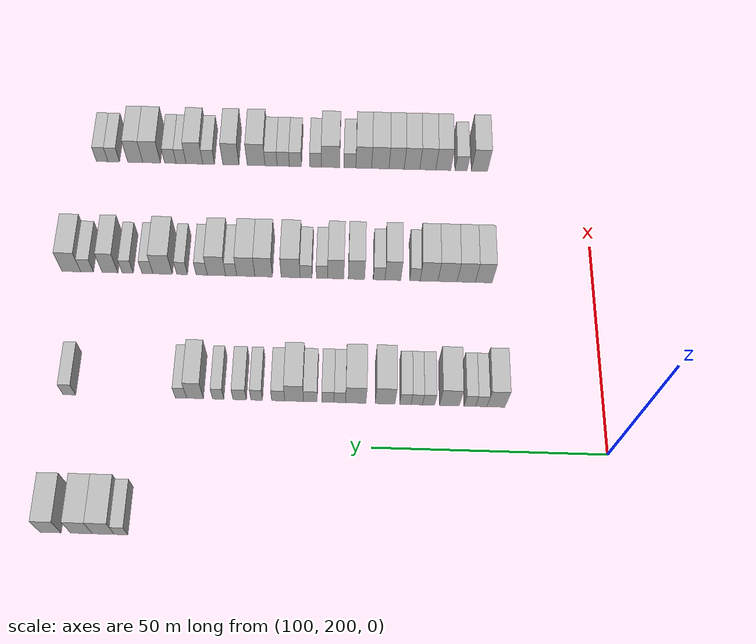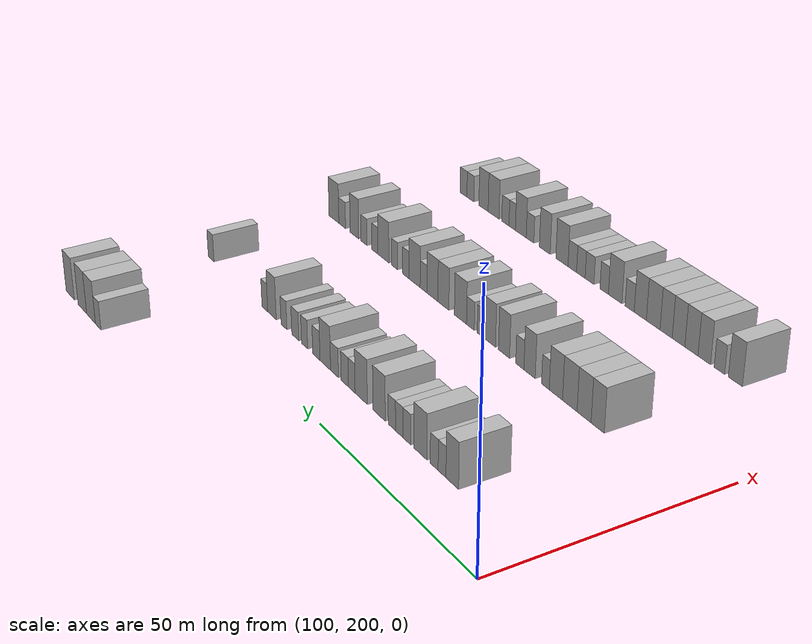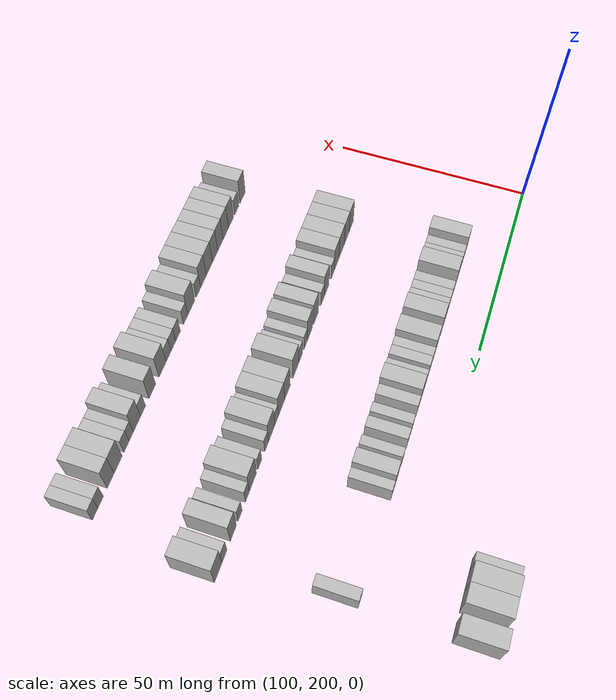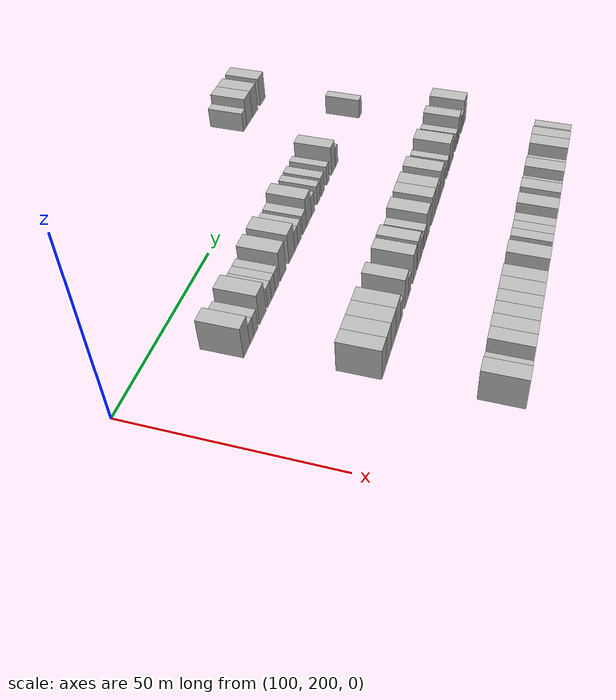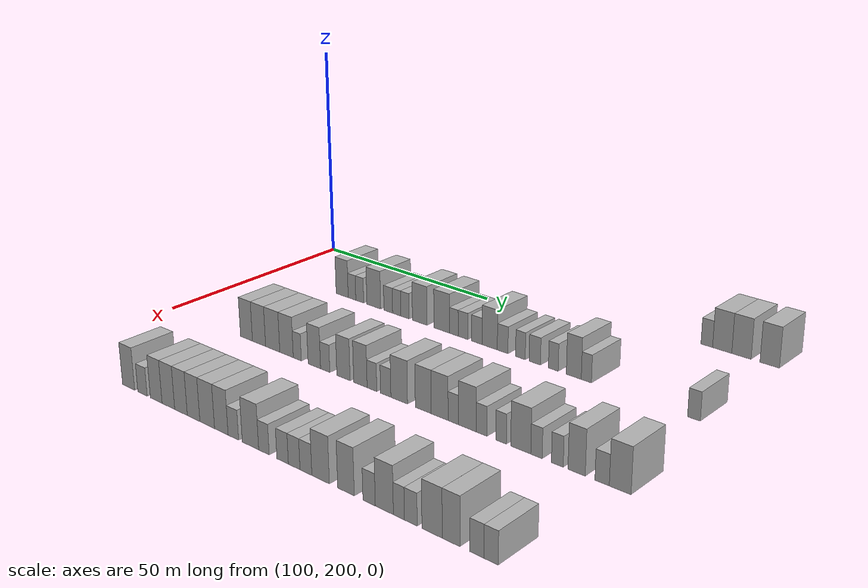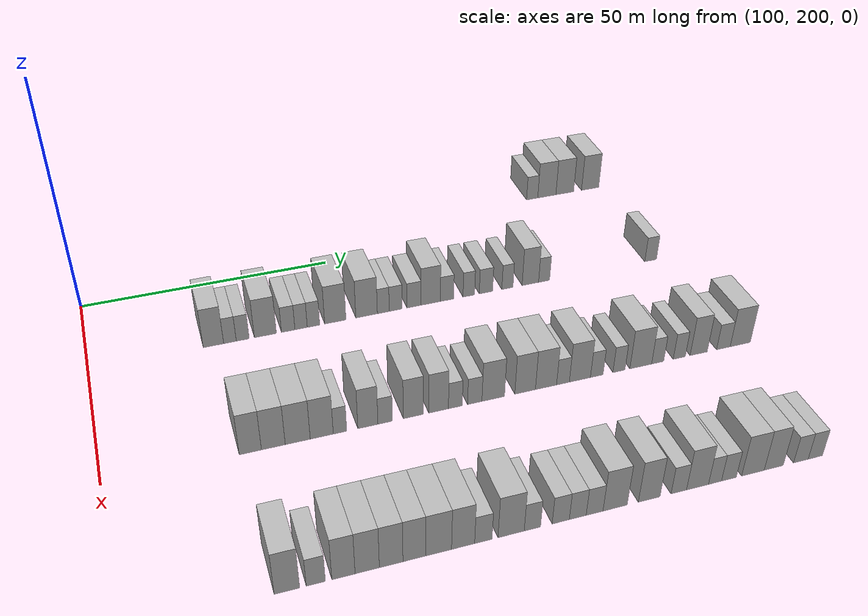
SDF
<sdf version="1.6">
 <world name="default">
  <model name="building_643">
   <static>1</static>
   <pose>85.0000 301.0085 0 0.000000 0.000000 0.000000</pose>
   <link name="link">
    <pose>0 0 3.00 0 0 0</pose>
    <collision name="collision"><geometry><box><size>10.0000 2.7618 6.0000</size></box></geometry></collision>
    <visual name="visual">
     <cast_shadows>0</cast_shadows>
     <geometry><box><size>10.0000 2.7618 6.0000</size></box></geometry>
     <material>
      <script>
       <uri>model://HANNAS_wall/materials/scripts</uri>
       <uri>model://HANNAS_wall/materials/textures</uri>
       <name>vrc/HANNAS_wall</name>
      </script>
     </material>
    </visual>
   </link>
  </model>
  <model name="building_644">
   <static>1</static>
   <pose>85.0000 304.6378 0 0.000000 0.000000 0.000000</pose>
   <link name="link">
    <pose>0 0 4.50 0 0 0</pose>
    <collision name="collision"><geometry><box><size>10.0000 4.4969 9.0000</size></box></geometry></collision>
    <visual name="visual">
     <cast_shadows>0</cast_shadows>
     <geometry><box><size>10.0000 4.4969 9.0000</size></box></geometry>
     <material>
      <script>
       <uri>model://HANNAS_wall/materials/scripts</uri>
       <uri>model://HANNAS_wall/materials/textures</uri>
       <name>vrc/HANNAS_wall</name>
      </script>
     </material>
    </visual>
   </link>
  </model>
  <model name="building_645">
   <static>1</static>
   <pose>85.0000 309.1018 0 0.000000 0.000000 0.000000</pose>
   <link name="link">
    <pose>0 0 4.50 0 0 0</pose>
    <collision name="collision"><geometry><box><size>10.0000 4.4311 9.0000</size></box></geometry></collision>
    <visual name="visual">
     <cast_shadows>0</cast_shadows>
     <geometry><box><size>10.0000 4.4311 9.0000</size></box></geometry>
     <material>
      <script>
       <uri>model://HANNAS_wall/materials/scripts</uri>
       <uri>model://HANNAS_wall/materials/textures</uri>
       <name>vrc/HANNAS_wall</name>
      </script>
     </material>
    </visual>
   </link>
  </model>
  <model name="building_646">
   <static>1</static>
   <pose>85.0000 315.4865 0 0.000000 0.000000 0.000000</pose>
   <link name="link">
    <pose>0 0 4.50 0 0 0</pose>
    <collision name="collision"><geometry><box><size>10.0000 4.3384 9.0000</size></box></geometry></collision>
    <visual name="visual">
     <cast_shadows>0</cast_shadows>
     <geometry><box><size>10.0000 4.3384 9.0000</size></box></geometry>
     <material>
      <script>
       <uri>model://HANNAS_wall/materials/scripts</uri>
       <uri>model://HANNAS_wall/materials/textures</uri>
       <name>vrc/HANNAS_wall</name>
      </script>
     </material>
    </visual>
   </link>
  </model>
  <model name="building_852">
   <static>1</static>
   <pose>115.0000 223.3250 0 0.000000 0.000000 0.000000</pose>
   <link name="link">
    <pose>0 0 4.50 0 0 0</pose>
    <collision name="collision"><geometry><box><size>10.0000 3.9006 9.0000</size></box></geometry></collision>
    <visual name="visual">
     <cast_shadows>0</cast_shadows>
     <geometry><box><size>10.0000 3.9006 9.0000</size></box></geometry>
     <material>
      <script>
       <uri>model://HANNAS_wall/materials/scripts</uri>
       <uri>model://HANNAS_wall/materials/textures</uri>
       <name>vrc/HANNAS_wall</name>
      </script>
     </material>
    </visual>
   </link>
  </model>
  <model name="building_853">
   <static>1</static>
   <pose>115.0000 226.4879 0 0.000000 0.000000 0.000000</pose>
   <link name="link">
    <pose>0 0 3.00 0 0 0</pose>
    <collision name="collision"><geometry><box><size>10.0000 2.4252 6.0000</size></box></geometry></collision>
    <visual name="visual">
     <cast_shadows>0</cast_shadows>
     <geometry><box><size>10.0000 2.4252 6.0000</size></box></geometry>
     <material>
      <script>
       <uri>model://HANNAS_wall/materials/scripts</uri>
       <uri>model://HANNAS_wall/materials/textures</uri>
       <name>vrc/HANNAS_wall</name>
      </script>
     </material>
    </visual>
   </link>
  </model>
  <model name="building_854">
   <static>1</static>
   <pose>115.0000 228.9532 0 0.000000 0.000000 0.000000</pose>
   <link name="link">
    <pose>0 0 3.00 0 0 0</pose>
    <collision name="collision"><geometry><box><size>10.0000 2.5054 6.0000</size></box></geometry></collision>
    <visual name="visual">
     <cast_shadows>0</cast_shadows>
     <geometry><box><size>10.0000 2.5054 6.0000</size></box></geometry>
     <material>
      <script>
       <uri>model://HANNAS_wall/materials/scripts</uri>
       <uri>model://HANNAS_wall/materials/textures</uri>
       <name>vrc/HANNAS_wall</name>
      </script>
     </material>
    </visual>
   </link>
  </model>
  <model name="building_855">
   <static>1</static>
   <pose>115.0000 233.3569 0 0.000000 0.000000 0.000000</pose>
   <link name="link">
    <pose>0 0 4.50 0 0 0</pose>
    <collision name="collision"><geometry><box><size>10.0000 4.3020 9.0000</size></box></geometry></collision>
    <visual name="visual">
     <cast_shadows>0</cast_shadows>
     <geometry><box><size>10.0000 4.3020 9.0000</size></box></geometry>
     <material>
      <script>
       <uri>model://HANNAS_wall/materials/scripts</uri>
       <uri>model://HANNAS_wall/materials/textures</uri>
       <name>vrc/HANNAS_wall</name>
      </script>
     </material>
    </visual>
   </link>
  </model>
  <model name="building_856">
   <static>1</static>
   <pose>115.0000 237.8327 0 0.000000 0.000000 0.000000</pose>
   <link name="link">
    <pose>0 0 3.00 0 0 0</pose>
    <collision name="collision"><geometry><box><size>10.0000 2.6496 6.0000</size></box></geometry></collision>
    <visual name="visual">
     <cast_shadows>0</cast_shadows>
     <geometry><box><size>10.0000 2.6496 6.0000</size></box></geometry>
     <material>
      <script>
       <uri>model://HANNAS_wall/materials/scripts</uri>
       <uri>model://HANNAS_wall/materials/textures</uri>
       <name>vrc/HANNAS_wall</name>
      </script>
     </material>
    </visual>
   </link>
  </model>
  <model name="building_857">
   <static>1</static>
   <pose>115.0000 240.3846 0 0.000000 0.000000 0.000000</pose>
   <link name="link">
    <pose>0 0 3.00 0 0 0</pose>
    <collision name="collision"><geometry><box><size>10.0000 2.4543 6.0000</size></box></geometry></collision>
    <visual name="visual">
     <cast_shadows>0</cast_shadows>
     <geometry><box><size>10.0000 2.4543 6.0000</size></box></geometry>
     <material>
      <script>
       <uri>model://HANNAS_wall/materials/scripts</uri>
       <uri>model://HANNAS_wall/materials/textures</uri>
       <name>vrc/HANNAS_wall</name>
      </script>
     </material>
    </visual>
   </link>
  </model>
  <model name="building_858">
   <static>1</static>
   <pose>115.0000 242.8525 0 0.000000 0.000000 0.000000</pose>
   <link name="link">
    <pose>0 0 3.00 0 0 0</pose>
    <collision name="collision"><geometry><box><size>10.0000 2.4816 6.0000</size></box></geometry></collision>
    <visual name="visual">
     <cast_shadows>0</cast_shadows>
     <geometry><box><size>10.0000 2.4816 6.0000</size></box></geometry>
     <material>
      <script>
       <uri>model://HANNAS_wall/materials/scripts</uri>
       <uri>model://HANNAS_wall/materials/textures</uri>
       <name>vrc/HANNAS_wall</name>
      </script>
     </material>
    </visual>
   </link>
  </model>
  <model name="building_859">
   <static>1</static>
   <pose>115.0000 247.2357 0 0.000000 0.000000 0.000000</pose>
   <link name="link">
    <pose>0 0 4.50 0 0 0</pose>
    <collision name="collision"><geometry><box><size>10.0000 4.2849 9.0000</size></box></geometry></collision>
    <visual name="visual">
     <cast_shadows>0</cast_shadows>
     <geometry><box><size>10.0000 4.2849 9.0000</size></box></geometry>
     <material>
      <script>
       <uri>model://HANNAS_wall/materials/scripts</uri>
       <uri>model://HANNAS_wall/materials/textures</uri>
       <name>vrc/HANNAS_wall</name>
      </script>
     </material>
    </visual>
   </link>
  </model>
  <model name="building_860">
   <static>1</static>
   <pose>115.0000 253.5825 0 0.000000 0.000000 0.000000</pose>
   <link name="link">
    <pose>0 0 4.50 0 0 0</pose>
    <collision name="collision"><geometry><box><size>10.0000 4.4086 9.0000</size></box></geometry></collision>
    <visual name="visual">
     <cast_shadows>0</cast_shadows>
     <geometry><box><size>10.0000 4.4086 9.0000</size></box></geometry>
     <material>
      <script>
       <uri>model://HANNAS_wall/materials/scripts</uri>
       <uri>model://HANNAS_wall/materials/textures</uri>
       <name>vrc/HANNAS_wall</name>
      </script>
     </material>
    </visual>
   </link>
  </model>
  <model name="building_861">
   <static>1</static>
   <pose>115.0000 257.0149 0 0.000000 0.000000 0.000000</pose>
   <link name="link">
    <pose>0 0 3.00 0 0 0</pose>
    <collision name="collision"><geometry><box><size>10.0000 2.4562 6.0000</size></box></geometry></collision>
    <visual name="visual">
     <cast_shadows>0</cast_shadows>
     <geometry><box><size>10.0000 2.4562 6.0000</size></box></geometry>
     <material>
      <script>
       <uri>model://HANNAS_wall/materials/scripts</uri>
       <uri>model://HANNAS_wall/materials/textures</uri>
       <name>vrc/HANNAS_wall</name>
      </script>
     </material>
    </visual>
   </link>
  </model>
  <model name="building_862">
   <static>1</static>
   <pose>115.0000 259.5790 0 0.000000 0.000000 0.000000</pose>
   <link name="link">
    <pose>0 0 3.00 0 0 0</pose>
    <collision name="collision"><geometry><box><size>10.0000 2.6721 6.0000</size></box></geometry></collision>
    <visual name="visual">
     <cast_shadows>0</cast_shadows>
     <geometry><box><size>10.0000 2.6721 6.0000</size></box></geometry>
     <material>
      <script>
       <uri>model://HANNAS_wall/materials/scripts</uri>
       <uri>model://HANNAS_wall/materials/textures</uri>
       <name>vrc/HANNAS_wall</name>
      </script>
     </material>
    </visual>
   </link>
  </model>
  <model name="building_863">
   <static>1</static>
   <pose>115.0000 263.3955 0 0.000000 0.000000 0.000000</pose>
   <link name="link">
    <pose>0 0 3.00 0 0 0</pose>
    <collision name="collision"><geometry><box><size>10.0000 2.9608 6.0000</size></box></geometry></collision>
    <visual name="visual">
     <cast_shadows>0</cast_shadows>
     <geometry><box><size>10.0000 2.9608 6.0000</size></box></geometry>
     <material>
      <script>
       <uri>model://HANNAS_wall/materials/scripts</uri>
       <uri>model://HANNAS_wall/materials/textures</uri>
       <name>vrc/HANNAS_wall</name>
      </script>
     </material>
    </visual>
   </link>
  </model>
  <model name="building_864">
   <static>1</static>
   <pose>115.0000 266.9025 0 0.000000 0.000000 0.000000</pose>
   <link name="link">
    <pose>0 0 4.50 0 0 0</pose>
    <collision name="collision"><geometry><box><size>10.0000 4.0531 9.0000</size></box></geometry></collision>
    <visual name="visual">
     <cast_shadows>0</cast_shadows>
     <geometry><box><size>10.0000 4.0531 9.0000</size></box></geometry>
     <material>
      <script>
       <uri>model://HANNAS_wall/materials/scripts</uri>
       <uri>model://HANNAS_wall/materials/textures</uri>
       <name>vrc/HANNAS_wall</name>
      </script>
     </material>
    </visual>
   </link>
  </model>
  <model name="building_865">
   <static>1</static>
   <pose>115.0000 270.3402 0 0.000000 0.000000 0.000000</pose>
   <link name="link">
    <pose>0 0 3.00 0 0 0</pose>
    <collision name="collision"><geometry><box><size>10.0000 2.8223 6.0000</size></box></geometry></collision>
    <visual name="visual">
     <cast_shadows>0</cast_shadows>
     <geometry><box><size>10.0000 2.8223 6.0000</size></box></geometry>
     <material>
      <script>
       <uri>model://HANNAS_wall/materials/scripts</uri>
       <uri>model://HANNAS_wall/materials/textures</uri>
       <name>vrc/HANNAS_wall</name>
      </script>
     </material>
    </visual>
   </link>
  </model>
  <model name="building_866">
   <static>1</static>
   <pose>115.0000 274.9977 0 0.000000 0.000000 0.000000</pose>
   <link name="link">
    <pose>0 0 3.00 0 0 0</pose>
    <collision name="collision"><geometry><box><size>10.0000 2.4926 6.0000</size></box></geometry></collision>
    <visual name="visual">
     <cast_shadows>0</cast_shadows>
     <geometry><box><size>10.0000 2.4926 6.0000</size></box></geometry>
     <material>
      <script>
       <uri>model://HANNAS_wall/materials/scripts</uri>
       <uri>model://HANNAS_wall/materials/textures</uri>
       <name>vrc/HANNAS_wall</name>
      </script>
     </material>
    </visual>
   </link>
  </model>
  <model name="building_867">
   <static>1</static>
   <pose>115.0000 278.6900 0 0.000000 0.000000 0.000000</pose>
   <link name="link">
    <pose>0 0 3.00 0 0 0</pose>
    <collision name="collision"><geometry><box><size>10.0000 2.8920 6.0000</size></box></geometry></collision>
    <visual name="visual">
     <cast_shadows>0</cast_shadows>
     <geometry><box><size>10.0000 2.8920 6.0000</size></box></geometry>
     <material>
      <script>
       <uri>model://HANNAS_wall/materials/scripts</uri>
       <uri>model://HANNAS_wall/materials/textures</uri>
       <name>vrc/HANNAS_wall</name>
      </script>
     </material>
    </visual>
   </link>
  </model>
  <model name="building_868">
   <static>1</static>
   <pose>115.0000 283.3525 0 0.000000 0.000000 0.000000</pose>
   <link name="link">
    <pose>0 0 3.00 0 0 0</pose>
    <collision name="collision"><geometry><box><size>10.0000 2.4328 6.0000</size></box></geometry></collision>
    <visual name="visual">
     <cast_shadows>0</cast_shadows>
     <geometry><box><size>10.0000 2.4328 6.0000</size></box></geometry>
     <material>
      <script>
       <uri>model://HANNAS_wall/materials/scripts</uri>
       <uri>model://HANNAS_wall/materials/textures</uri>
       <name>vrc/HANNAS_wall</name>
      </script>
     </material>
    </visual>
   </link>
  </model>
  <model name="building_869">
   <static>1</static>
   <pose>115.0000 288.3848 0 0.000000 0.000000 0.000000</pose>
   <link name="link">
    <pose>0 0 4.50 0 0 0</pose>
    <collision name="collision"><geometry><box><size>10.0000 3.6320 9.0000</size></box></geometry></collision>
    <visual name="visual">
     <cast_shadows>0</cast_shadows>
     <geometry><box><size>10.0000 3.6320 9.0000</size></box></geometry>
     <material>
      <script>
       <uri>model://HANNAS_wall/materials/scripts</uri>
       <uri>model://HANNAS_wall/materials/textures</uri>
       <name>vrc/HANNAS_wall</name>
      </script>
     </material>
    </visual>
   </link>
  </model>
  <model name="building_870">
   <static>1</static>
   <pose>115.0000 291.4237 0 0.000000 0.000000 0.000000</pose>
   <link name="link">
    <pose>0 0 3.00 0 0 0</pose>
    <collision name="collision"><geometry><box><size>10.0000 2.4457 6.0000</size></box></geometry></collision>
    <visual name="visual">
     <cast_shadows>0</cast_shadows>
     <geometry><box><size>10.0000 2.4457 6.0000</size></box></geometry>
     <material>
      <script>
       <uri>model://HANNAS_wall/materials/scripts</uri>
       <uri>model://HANNAS_wall/materials/textures</uri>
       <name>vrc/HANNAS_wall</name>
      </script>
     </material>
    </visual>
   </link>
  </model>
  <model name="building_871">
   <static>1</static>
   <pose>115.0000 315.7192 0 0.000000 0.000000 0.000000</pose>
   <link name="link">
    <pose>0 0 3.00 0 0 0</pose>
    <collision name="collision"><geometry><box><size>10.0000 2.7151 6.0000</size></box></geometry></collision>
    <visual name="visual">
     <cast_shadows>0</cast_shadows>
     <geometry><box><size>10.0000 2.7151 6.0000</size></box></geometry>
     <material>
      <script>
       <uri>model://HANNAS_wall/materials/scripts</uri>
       <uri>model://HANNAS_wall/materials/textures</uri>
       <name>vrc/HANNAS_wall</name>
      </script>
     </material>
    </visual>
   </link>
  </model>
  <model name="building_1082">
   <static>1</static>
   <pose>145.0000 224.9341 0 0.000000 0.000000 0.000000</pose>
   <link name="link">
    <pose>0 0 4.50 0 0 0</pose>
    <collision name="collision"><geometry><box><size>10.0000 3.8116 9.0000</size></box></geometry></collision>
    <visual name="visual">
     <cast_shadows>0</cast_shadows>
     <geometry><box><size>10.0000 3.8116 9.0000</size></box></geometry>
     <material>
      <script>
       <uri>model://HANNAS_wall/materials/scripts</uri>
       <uri>model://HANNAS_wall/materials/textures</uri>
       <name>vrc/HANNAS_wall</name>
      </script>
     </material>
    </visual>
   </link>
  </model>
  <model name="building_1083">
   <static>1</static>
   <pose>145.0000 228.9083 0 0.000000 0.000000 0.000000</pose>
   <link name="link">
    <pose>0 0 4.50 0 0 0</pose>
    <collision name="collision"><geometry><box><size>10.0000 4.1368 9.0000</size></box></geometry></collision>
    <visual name="visual">
     <cast_shadows>0</cast_shadows>
     <geometry><box><size>10.0000 4.1368 9.0000</size></box></geometry>
     <material>
      <script>
       <uri>model://HANNAS_wall/materials/scripts</uri>
       <uri>model://HANNAS_wall/materials/textures</uri>
       <name>vrc/HANNAS_wall</name>
      </script>
     </material>
    </visual>
   </link>
  </model>
  <model name="building_1084">
   <static>1</static>
   <pose>145.0000 233.1673 0 0.000000 0.000000 0.000000</pose>
   <link name="link">
    <pose>0 0 4.50 0 0 0</pose>
    <collision name="collision"><geometry><box><size>10.0000 4.3814 9.0000</size></box></geometry></collision>
    <visual name="visual">
     <cast_shadows>0</cast_shadows>
     <geometry><box><size>10.0000 4.3814 9.0000</size></box></geometry>
     <material>
      <script>
       <uri>model://HANNAS_wall/materials/scripts</uri>
       <uri>model://HANNAS_wall/materials/textures</uri>
       <name>vrc/HANNAS_wall</name>
      </script>
     </material>
    </visual>
   </link>
  </model>
  <model name="building_1085">
   <static>1</static>
   <pose>145.0000 237.3993 0 0.000000 0.000000 0.000000</pose>
   <link name="link">
    <pose>0 0 4.50 0 0 0</pose>
    <collision name="collision"><geometry><box><size>10.0000 4.0825 9.0000</size></box></geometry></collision>
    <visual name="visual">
     <cast_shadows>0</cast_shadows>
     <geometry><box><size>10.0000 4.0825 9.0000</size></box></geometry>
     <material>
      <script>
       <uri>model://HANNAS_wall/materials/scripts</uri>
       <uri>model://HANNAS_wall/materials/textures</uri>
       <name>vrc/HANNAS_wall</name>
      </script>
     </material>
    </visual>
   </link>
  </model>
  <model name="building_1086">
   <static>1</static>
   <pose>145.0000 240.6433 0 0.000000 0.000000 0.000000</pose>
   <link name="link">
    <pose>0 0 3.00 0 0 0</pose>
    <collision name="collision"><geometry><box><size>10.0000 2.4056 6.0000</size></box></geometry></collision>
    <visual name="visual">
     <cast_shadows>0</cast_shadows>
     <geometry><box><size>10.0000 2.4056 6.0000</size></box></geometry>
     <material>
      <script>
       <uri>model://HANNAS_wall/materials/scripts</uri>
       <uri>model://HANNAS_wall/materials/textures</uri>
       <name>vrc/HANNAS_wall</name>
      </script>
     </material>
    </visual>
   </link>
  </model>
  <model name="building_1087">
   <static>1</static>
   <pose>145.0000 245.6607 0 0.000000 0.000000 0.000000</pose>
   <link name="link">
    <pose>0 0 4.50 0 0 0</pose>
    <collision name="collision"><geometry><box><size>10.0000 3.6292 9.0000</size></box></geometry></collision>
    <visual name="visual">
     <cast_shadows>0</cast_shadows>
     <geometry><box><size>10.0000 3.6292 9.0000</size></box></geometry>
     <material>
      <script>
       <uri>model://HANNAS_wall/materials/scripts</uri>
       <uri>model://HANNAS_wall/materials/textures</uri>
       <name>vrc/HANNAS_wall</name>
      </script>
     </material>
    </visual>
   </link>
  </model>
  <model name="building_1088">
   <static>1</static>
   <pose>145.0000 248.8013 0 0.000000 0.000000 0.000000</pose>
   <link name="link">
    <pose>0 0 3.00 0 0 0</pose>
    <collision name="collision"><geometry><box><size>10.0000 2.6521 6.0000</size></box></geometry></collision>
    <visual name="visual">
     <cast_shadows>0</cast_shadows>
     <geometry><box><size>10.0000 2.6521 6.0000</size></box></geometry>
     <material>
      <script>
       <uri>model://HANNAS_wall/materials/scripts</uri>
       <uri>model://HANNAS_wall/materials/textures</uri>
       <name>vrc/HANNAS_wall</name>
      </script>
     </material>
    </visual>
   </link>
  </model>
  <model name="building_1089">
   <static>1</static>
   <pose>145.0000 253.9844 0 0.000000 0.000000 0.000000</pose>
   <link name="link">
    <pose>0 0 4.50 0 0 0</pose>
    <collision name="collision"><geometry><box><size>10.0000 3.7141 9.0000</size></box></geometry></collision>
    <visual name="visual">
     <cast_shadows>0</cast_shadows>
     <geometry><box><size>10.0000 3.7141 9.0000</size></box></geometry>
     <material>
      <script>
       <uri>model://HANNAS_wall/materials/scripts</uri>
       <uri>model://HANNAS_wall/materials/textures</uri>
       <name>vrc/HANNAS_wall</name>
      </script>
     </material>
    </visual>
   </link>
  </model>
  <model name="building_1090">
   <static>1</static>
   <pose>145.0000 258.6760 0 0.000000 0.000000 0.000000</pose>
   <link name="link">
    <pose>0 0 4.50 0 0 0</pose>
    <collision name="collision"><geometry><box><size>10.0000 3.6691 9.0000</size></box></geometry></collision>
    <visual name="visual">
     <cast_shadows>0</cast_shadows>
     <geometry><box><size>10.0000 3.6691 9.0000</size></box></geometry>
     <material>
      <script>
       <uri>model://HANNAS_wall/materials/scripts</uri>
       <uri>model://HANNAS_wall/materials/textures</uri>
       <name>vrc/HANNAS_wall</name>
      </script>
     </material>
    </visual>
   </link>
  </model>
  <model name="building_1091">
   <static>1</static>
   <pose>145.0000 261.8155 0 0.000000 0.000000 0.000000</pose>
   <link name="link">
    <pose>0 0 3.00 0 0 0</pose>
    <collision name="collision"><geometry><box><size>10.0000 2.6100 6.0000</size></box></geometry></collision>
    <visual name="visual">
     <cast_shadows>0</cast_shadows>
     <geometry><box><size>10.0000 2.6100 6.0000</size></box></geometry>
     <material>
      <script>
       <uri>model://HANNAS_wall/materials/scripts</uri>
       <uri>model://HANNAS_wall/materials/textures</uri>
       <name>vrc/HANNAS_wall</name>
      </script>
     </material>
    </visual>
   </link>
  </model>
  <model name="building_1092">
   <static>1</static>
   <pose>145.0000 265.4867 0 0.000000 0.000000 0.000000</pose>
   <link name="link">
    <pose>0 0 3.00 0 0 0</pose>
    <collision name="collision"><geometry><box><size>10.0000 2.7323 6.0000</size></box></geometry></collision>
    <visual name="visual">
     <cast_shadows>0</cast_shadows>
     <geometry><box><size>10.0000 2.7323 6.0000</size></box></geometry>
     <material>
      <script>
       <uri>model://HANNAS_wall/materials/scripts</uri>
       <uri>model://HANNAS_wall/materials/textures</uri>
       <name>vrc/HANNAS_wall</name>
      </script>
     </material>
    </visual>
   </link>
  </model>
  <model name="building_1093">
   <static>1</static>
   <pose>145.0000 269.0209 0 0.000000 0.000000 0.000000</pose>
   <link name="link">
    <pose>0 0 4.50 0 0 0</pose>
    <collision name="collision"><geometry><box><size>10.0000 4.3362 9.0000</size></box></geometry></collision>
    <visual name="visual">
     <cast_shadows>0</cast_shadows>
     <geometry><box><size>10.0000 4.3362 9.0000</size></box></geometry>
     <material>
      <script>
       <uri>model://HANNAS_wall/materials/scripts</uri>
       <uri>model://HANNAS_wall/materials/textures</uri>
       <name>vrc/HANNAS_wall</name>
      </script>
     </material>
    </visual>
   </link>
  </model>
  <model name="building_1094">
   <static>1</static>
   <pose>145.0000 275.1963 0 0.000000 0.000000 0.000000</pose>
   <link name="link">
    <pose>0 0 4.50 0 0 0</pose>
    <collision name="collision"><geometry><box><size>10.0000 4.0146 9.0000</size></box></geometry></collision>
    <visual name="visual">
     <cast_shadows>0</cast_shadows>
     <geometry><box><size>10.0000 4.0146 9.0000</size></box></geometry>
     <material>
      <script>
       <uri>model://HANNAS_wall/materials/scripts</uri>
       <uri>model://HANNAS_wall/materials/textures</uri>
       <name>vrc/HANNAS_wall</name>
      </script>
     </material>
    </visual>
   </link>
  </model>
  <model name="building_1095">
   <static>1</static>
   <pose>145.0000 279.2838 0 0.000000 0.000000 0.000000</pose>
   <link name="link">
    <pose>0 0 4.50 0 0 0</pose>
    <collision name="collision"><geometry><box><size>10.0000 4.1605 9.0000</size></box></geometry></collision>
    <visual name="visual">
     <cast_shadows>0</cast_shadows>
     <geometry><box><size>10.0000 4.1605 9.0000</size></box></geometry>
     <material>
      <script>
       <uri>model://HANNAS_wall/materials/scripts</uri>
       <uri>model://HANNAS_wall/materials/textures</uri>
       <name>vrc/HANNAS_wall</name>
      </script>
     </material>
    </visual>
   </link>
  </model>
  <model name="building_1096">
   <static>1</static>
   <pose>145.0000 282.6330 0 0.000000 0.000000 0.000000</pose>
   <link name="link">
    <pose>0 0 3.00 0 0 0</pose>
    <collision name="collision"><geometry><box><size>10.0000 2.5378 6.0000</size></box></geometry></collision>
    <visual name="visual">
     <cast_shadows>0</cast_shadows>
     <geometry><box><size>10.0000 2.5378 6.0000</size></box></geometry>
     <material>
      <script>
       <uri>model://HANNAS_wall/materials/scripts</uri>
       <uri>model://HANNAS_wall/materials/textures</uri>
       <name>vrc/HANNAS_wall</name>
      </script>
     </material>
    </visual>
   </link>
  </model>
  <model name="building_1097">
   <static>1</static>
   <pose>145.0000 286.0090 0 0.000000 0.000000 0.000000</pose>
   <link name="link">
    <pose>0 0 4.50 0 0 0</pose>
    <collision name="collision"><geometry><box><size>10.0000 4.2143 9.0000</size></box></geometry></collision>
    <visual name="visual">
     <cast_shadows>0</cast_shadows>
     <geometry><box><size>10.0000 4.2143 9.0000</size></box></geometry>
     <material>
      <script>
       <uri>model://HANNAS_wall/materials/scripts</uri>
       <uri>model://HANNAS_wall/materials/textures</uri>
       <name>vrc/HANNAS_wall</name>
      </script>
     </material>
    </visual>
   </link>
  </model>
  <model name="building_1098">
   <static>1</static>
   <pose>145.0000 289.3948 0 0.000000 0.000000 0.000000</pose>
   <link name="link">
    <pose>0 0 3.00 0 0 0</pose>
    <collision name="collision"><geometry><box><size>10.0000 2.5574 6.0000</size></box></geometry></collision>
    <visual name="visual">
     <cast_shadows>0</cast_shadows>
     <geometry><box><size>10.0000 2.5574 6.0000</size></box></geometry>
     <material>
      <script>
       <uri>model://HANNAS_wall/materials/scripts</uri>
       <uri>model://HANNAS_wall/materials/textures</uri>
       <name>vrc/HANNAS_wall</name>
      </script>
     </material>
    </visual>
   </link>
  </model>
  <model name="building_1099">
   <static>1</static>
   <pose>145.0000 293.8994 0 0.000000 0.000000 0.000000</pose>
   <link name="link">
    <pose>0 0 3.00 0 0 0</pose>
    <collision name="collision"><geometry><box><size>10.0000 2.4518 6.0000</size></box></geometry></collision>
    <visual name="visual">
     <cast_shadows>0</cast_shadows>
     <geometry><box><size>10.0000 2.4518 6.0000</size></box></geometry>
     <material>
      <script>
       <uri>model://HANNAS_wall/materials/scripts</uri>
       <uri>model://HANNAS_wall/materials/textures</uri>
       <name>vrc/HANNAS_wall</name>
      </script>
     </material>
    </visual>
   </link>
  </model>
  <model name="building_1100">
   <static>1</static>
   <pose>145.0000 298.3661 0 0.000000 0.000000 0.000000</pose>
   <link name="link">
    <pose>0 0 4.50 0 0 0</pose>
    <collision name="collision"><geometry><box><size>10.0000 4.4815 9.0000</size></box></geometry></collision>
    <visual name="visual">
     <cast_shadows>0</cast_shadows>
     <geometry><box><size>10.0000 4.4815 9.0000</size></box></geometry>
     <material>
      <script>
       <uri>model://HANNAS_wall/materials/scripts</uri>
       <uri>model://HANNAS_wall/materials/textures</uri>
       <name>vrc/HANNAS_wall</name>
      </script>
     </material>
    </visual>
   </link>
  </model>
  <model name="building_1101">
   <static>1</static>
   <pose>145.0000 301.8591 0 0.000000 0.000000 0.000000</pose>
   <link name="link">
    <pose>0 0 3.00 0 0 0</pose>
    <collision name="collision"><geometry><box><size>10.0000 2.5046 6.0000</size></box></geometry></collision>
    <visual name="visual">
     <cast_shadows>0</cast_shadows>
     <geometry><box><size>10.0000 2.5046 6.0000</size></box></geometry>
     <material>
      <script>
       <uri>model://HANNAS_wall/materials/scripts</uri>
       <uri>model://HANNAS_wall/materials/textures</uri>
       <name>vrc/HANNAS_wall</name>
      </script>
     </material>
    </visual>
   </link>
  </model>
  <model name="building_1102">
   <static>1</static>
   <pose>145.0000 306.3802 0 0.000000 0.000000 0.000000</pose>
   <link name="link">
    <pose>0 0 3.00 0 0 0</pose>
    <collision name="collision"><geometry><box><size>10.0000 2.5376 6.0000</size></box></geometry></collision>
    <visual name="visual">
     <cast_shadows>0</cast_shadows>
     <geometry><box><size>10.0000 2.5376 6.0000</size></box></geometry>
     <material>
      <script>
       <uri>model://HANNAS_wall/materials/scripts</uri>
       <uri>model://HANNAS_wall/materials/textures</uri>
       <name>vrc/HANNAS_wall</name>
      </script>
     </material>
    </visual>
   </link>
  </model>
  <model name="building_1103">
   <static>1</static>
   <pose>145.0000 310.4630 0 0.000000 0.000000 0.000000</pose>
   <link name="link">
    <pose>0 0 4.50 0 0 0</pose>
    <collision name="collision"><geometry><box><size>10.0000 3.6281 9.0000</size></box></geometry></collision>
    <visual name="visual">
     <cast_shadows>0</cast_shadows>
     <geometry><box><size>10.0000 3.6281 9.0000</size></box></geometry>
     <material>
      <script>
       <uri>model://HANNAS_wall/materials/scripts</uri>
       <uri>model://HANNAS_wall/materials/textures</uri>
       <name>vrc/HANNAS_wall</name>
      </script>
     </material>
    </visual>
   </link>
  </model>
  <model name="building_1104">
   <static>1</static>
   <pose>145.0000 315.7356 0 0.000000 0.000000 0.000000</pose>
   <link name="link">
    <pose>0 0 3.00 0 0 0</pose>
    <collision name="collision"><geometry><box><size>10.0000 2.9170 6.0000</size></box></geometry></collision>
    <visual name="visual">
     <cast_shadows>0</cast_shadows>
     <geometry><box><size>10.0000 2.9170 6.0000</size></box></geometry>
     <material>
      <script>
       <uri>model://HANNAS_wall/materials/scripts</uri>
       <uri>model://HANNAS_wall/materials/textures</uri>
       <name>vrc/HANNAS_wall</name>
      </script>
     </material>
    </visual>
   </link>
  </model>
  <model name="building_1105">
   <static>1</static>
   <pose>145.0000 319.3687 0 0.000000 0.000000 0.000000</pose>
   <link name="link">
    <pose>0 0 4.50 0 0 0</pose>
    <collision name="collision"><geometry><box><size>10.0000 4.3491 9.0000</size></box></geometry></collision>
    <visual name="visual">
     <cast_shadows>0</cast_shadows>
     <geometry><box><size>10.0000 4.3491 9.0000</size></box></geometry>
     <material>
      <script>
       <uri>model://HANNAS_wall/materials/scripts</uri>
       <uri>model://HANNAS_wall/materials/textures</uri>
       <name>vrc/HANNAS_wall</name>
      </script>
     </material>
    </visual>
   </link>
  </model>
  <model name="building_1315">
   <static>1</static>
   <pose>175.0000 224.9515 0 0.000000 0.000000 0.000000</pose>
   <link name="link">
    <pose>0 0 4.50 0 0 0</pose>
    <collision name="collision"><geometry><box><size>10.0000 3.8829 9.0000</size></box></geometry></collision>
    <visual name="visual">
     <cast_shadows>0</cast_shadows>
     <geometry><box><size>10.0000 3.8829 9.0000</size></box></geometry>
     <material>
      <script>
       <uri>model://HANNAS_wall/materials/scripts</uri>
       <uri>model://HANNAS_wall/materials/textures</uri>
       <name>vrc/HANNAS_wall</name>
      </script>
     </material>
    </visual>
   </link>
  </model>
  <model name="building_1316">
   <static>1</static>
   <pose>175.0000 229.3672 0 0.000000 0.000000 0.000000</pose>
   <link name="link">
    <pose>0 0 3.00 0 0 0</pose>
    <collision name="collision"><geometry><box><size>10.0000 2.9485 6.0000</size></box></geometry></collision>
    <visual name="visual">
     <cast_shadows>0</cast_shadows>
     <geometry><box><size>10.0000 2.9485 6.0000</size></box></geometry>
     <material>
      <script>
       <uri>model://HANNAS_wall/materials/scripts</uri>
       <uri>model://HANNAS_wall/materials/textures</uri>
       <name>vrc/HANNAS_wall</name>
      </script>
     </material>
    </visual>
   </link>
  </model>
  <model name="building_1317">
   <static>1</static>
   <pose>175.0000 233.6485 0 0.000000 0.000000 0.000000</pose>
   <link name="link">
    <pose>0 0 4.50 0 0 0</pose>
    <collision name="collision"><geometry><box><size>10.0000 3.6141 9.0000</size></box></geometry></collision>
    <visual name="visual">
     <cast_shadows>0</cast_shadows>
     <geometry><box><size>10.0000 3.6141 9.0000</size></box></geometry>
     <material>
      <script>
       <uri>model://HANNAS_wall/materials/scripts</uri>
       <uri>model://HANNAS_wall/materials/textures</uri>
       <name>vrc/HANNAS_wall</name>
      </script>
     </material>
    </visual>
   </link>
  </model>
  <model name="building_1318">
   <static>1</static>
   <pose>175.0000 237.3689 0 0.000000 0.000000 0.000000</pose>
   <link name="link">
    <pose>0 0 4.50 0 0 0</pose>
    <collision name="collision"><geometry><box><size>10.0000 3.8268 9.0000</size></box></geometry></collision>
    <visual name="visual">
     <cast_shadows>0</cast_shadows>
     <geometry><box><size>10.0000 3.8268 9.0000</size></box></geometry>
     <material>
      <script>
       <uri>model://HANNAS_wall/materials/scripts</uri>
       <uri>model://HANNAS_wall/materials/textures</uri>
       <name>vrc/HANNAS_wall</name>
      </script>
     </material>
    </visual>
   </link>
  </model>
  <model name="building_1319">
   <static>1</static>
   <pose>175.0000 241.1600 0 0.000000 0.000000 0.000000</pose>
   <link name="link">
    <pose>0 0 4.50 0 0 0</pose>
    <collision name="collision"><geometry><box><size>10.0000 3.7554 9.0000</size></box></geometry></collision>
    <visual name="visual">
     <cast_shadows>0</cast_shadows>
     <geometry><box><size>10.0000 3.7554 9.0000</size></box></geometry>
     <material>
      <script>
       <uri>model://HANNAS_wall/materials/scripts</uri>
       <uri>model://HANNAS_wall/materials/textures</uri>
       <name>vrc/HANNAS_wall</name>
      </script>
     </material>
    </visual>
   </link>
  </model>
  <model name="building_1320">
   <static>1</static>
   <pose>175.0000 244.8692 0 0.000000 0.000000 0.000000</pose>
   <link name="link">
    <pose>0 0 4.50 0 0 0</pose>
    <collision name="collision"><geometry><box><size>10.0000 3.6631 9.0000</size></box></geometry></collision>
    <visual name="visual">
     <cast_shadows>0</cast_shadows>
     <geometry><box><size>10.0000 3.6631 9.0000</size></box></geometry>
     <material>
      <script>
       <uri>model://HANNAS_wall/materials/scripts</uri>
       <uri>model://HANNAS_wall/materials/textures</uri>
       <name>vrc/HANNAS_wall</name>
      </script>
     </material>
    </visual>
   </link>
  </model>
  <model name="building_1321">
   <static>1</static>
   <pose>175.0000 248.7992 0 0.000000 0.000000 0.000000</pose>
   <link name="link">
    <pose>0 0 4.50 0 0 0</pose>
    <collision name="collision"><geometry><box><size>10.0000 4.1969 9.0000</size></box></geometry></collision>
    <visual name="visual">
     <cast_shadows>0</cast_shadows>
     <geometry><box><size>10.0000 4.1969 9.0000</size></box></geometry>
     <material>
      <script>
       <uri>model://HANNAS_wall/materials/scripts</uri>
       <uri>model://HANNAS_wall/materials/textures</uri>
       <name>vrc/HANNAS_wall</name>
      </script>
     </material>
    </visual>
   </link>
  </model>
  <model name="building_1322">
   <static>1</static>
   <pose>175.0000 252.7967 0 0.000000 0.000000 0.000000</pose>
   <link name="link">
    <pose>0 0 4.50 0 0 0</pose>
    <collision name="collision"><geometry><box><size>10.0000 3.7981 9.0000</size></box></geometry></collision>
    <visual name="visual">
     <cast_shadows>0</cast_shadows>
     <geometry><box><size>10.0000 3.7981 9.0000</size></box></geometry>
     <material>
      <script>
       <uri>model://HANNAS_wall/materials/scripts</uri>
       <uri>model://HANNAS_wall/materials/textures</uri>
       <name>vrc/HANNAS_wall</name>
      </script>
     </material>
    </visual>
   </link>
  </model>
  <model name="building_1323">
   <static>1</static>
   <pose>175.0000 256.1415 0 0.000000 0.000000 0.000000</pose>
   <link name="link">
    <pose>0 0 3.00 0 0 0</pose>
    <collision name="collision"><geometry><box><size>10.0000 2.8915 6.0000</size></box></geometry></collision>
    <visual name="visual">
     <cast_shadows>0</cast_shadows>
     <geometry><box><size>10.0000 2.8915 6.0000</size></box></geometry>
     <material>
      <script>
       <uri>model://HANNAS_wall/materials/scripts</uri>
       <uri>model://HANNAS_wall/materials/textures</uri>
       <name>vrc/HANNAS_wall</name>
      </script>
     </material>
    </visual>
   </link>
  </model>
  <model name="building_1324">
   <static>1</static>
   <pose>175.0000 260.7903 0 0.000000 0.000000 0.000000</pose>
   <link name="link">
    <pose>0 0 4.50 0 0 0</pose>
    <collision name="collision"><geometry><box><size>10.0000 4.4062 9.0000</size></box></geometry></collision>
    <visual name="visual">
     <cast_shadows>0</cast_shadows>
     <geometry><box><size>10.0000 4.4062 9.0000</size></box></geometry>
     <material>
      <script>
       <uri>model://HANNAS_wall/materials/scripts</uri>
       <uri>model://HANNAS_wall/materials/textures</uri>
       <name>vrc/HANNAS_wall</name>
      </script>
     </material>
    </visual>
   </link>
  </model>
  <model name="building_1325">
   <static>1</static>
   <pose>175.0000 264.3797 0 0.000000 0.000000 0.000000</pose>
   <link name="link">
    <pose>0 0 3.00 0 0 0</pose>
    <collision name="collision"><geometry><box><size>10.0000 2.7725 6.0000</size></box></geometry></collision>
    <visual name="visual">
     <cast_shadows>0</cast_shadows>
     <geometry><box><size>10.0000 2.7725 6.0000</size></box></geometry>
     <material>
      <script>
       <uri>model://HANNAS_wall/materials/scripts</uri>
       <uri>model://HANNAS_wall/materials/textures</uri>
       <name>vrc/HANNAS_wall</name>
      </script>
     </material>
    </visual>
   </link>
  </model>
  <model name="building_1326">
   <static>1</static>
   <pose>175.0000 269.2392 0 0.000000 0.000000 0.000000</pose>
   <link name="link">
    <pose>0 0 3.00 0 0 0</pose>
    <collision name="collision"><geometry><box><size>10.0000 2.9465 6.0000</size></box></geometry></collision>
    <visual name="visual">
     <cast_shadows>0</cast_shadows>
     <geometry><box><size>10.0000 2.9465 6.0000</size></box></geometry>
     <material>
      <script>
       <uri>model://HANNAS_wall/materials/scripts</uri>
       <uri>model://HANNAS_wall/materials/textures</uri>
       <name>vrc/HANNAS_wall</name>
      </script>
     </material>
    </visual>
   </link>
  </model>
  <model name="building_1327">
   <static>1</static>
   <pose>175.0000 272.1793 0 0.000000 0.000000 0.000000</pose>
   <link name="link">
    <pose>0 0 3.00 0 0 0</pose>
    <collision name="collision"><geometry><box><size>10.0000 2.9336 6.0000</size></box></geometry></collision>
    <visual name="visual">
     <cast_shadows>0</cast_shadows>
     <geometry><box><size>10.0000 2.9336 6.0000</size></box></geometry>
     <material>
      <script>
       <uri>model://HANNAS_wall/materials/scripts</uri>
       <uri>model://HANNAS_wall/materials/textures</uri>
       <name>vrc/HANNAS_wall</name>
      </script>
     </material>
    </visual>
   </link>
  </model>
  <model name="building_1328">
   <static>1</static>
   <pose>175.0000 275.1201 0 0.000000 0.000000 0.000000</pose>
   <link name="link">
    <pose>0 0 3.00 0 0 0</pose>
    <collision name="collision"><geometry><box><size>10.0000 2.9480 6.0000</size></box></geometry></collision>
    <visual name="visual">
     <cast_shadows>0</cast_shadows>
     <geometry><box><size>10.0000 2.9480 6.0000</size></box></geometry>
     <material>
      <script>
       <uri>model://HANNAS_wall/materials/scripts</uri>
       <uri>model://HANNAS_wall/materials/textures</uri>
       <name>vrc/HANNAS_wall</name>
      </script>
     </material>
    </visual>
   </link>
  </model>
  <model name="building_1329">
   <static>1</static>
   <pose>175.0000 278.7318 0 0.000000 0.000000 0.000000</pose>
   <link name="link">
    <pose>0 0 4.50 0 0 0</pose>
    <collision name="collision"><geometry><box><size>10.0000 4.2755 9.0000</size></box></geometry></collision>
    <visual name="visual">
     <cast_shadows>0</cast_shadows>
     <geometry><box><size>10.0000 4.2755 9.0000</size></box></geometry>
     <material>
      <script>
       <uri>model://HANNAS_wall/materials/scripts</uri>
       <uri>model://HANNAS_wall/materials/textures</uri>
       <name>vrc/HANNAS_wall</name>
      </script>
     </material>
    </visual>
   </link>
  </model>
  <model name="building_1330">
   <static>1</static>
   <pose>175.0000 284.8177 0 0.000000 0.000000 0.000000</pose>
   <link name="link">
    <pose>0 0 4.50 0 0 0</pose>
    <collision name="collision"><geometry><box><size>10.0000 3.8963 9.0000</size></box></geometry></collision>
    <visual name="visual">
     <cast_shadows>0</cast_shadows>
     <geometry><box><size>10.0000 3.8963 9.0000</size></box></geometry>
     <material>
      <script>
       <uri>model://HANNAS_wall/materials/scripts</uri>
       <uri>model://HANNAS_wall/materials/textures</uri>
       <name>vrc/HANNAS_wall</name>
      </script>
     </material>
    </visual>
   </link>
  </model>
  <model name="building_1331">
   <static>1</static>
   <pose>175.0000 290.1768 0 0.000000 0.000000 0.000000</pose>
   <link name="link">
    <pose>0 0 3.00 0 0 0</pose>
    <collision name="collision"><geometry><box><size>10.0000 2.8220 6.0000</size></box></geometry></collision>
    <visual name="visual">
     <cast_shadows>0</cast_shadows>
     <geometry><box><size>10.0000 2.8220 6.0000</size></box></geometry>
     <material>
      <script>
       <uri>model://HANNAS_wall/materials/scripts</uri>
       <uri>model://HANNAS_wall/materials/textures</uri>
       <name>vrc/HANNAS_wall</name>
      </script>
     </material>
    </visual>
   </link>
  </model>
  <model name="building_1332">
   <static>1</static>
   <pose>175.0000 293.6118 0 0.000000 0.000000 0.000000</pose>
   <link name="link">
    <pose>0 0 4.50 0 0 0</pose>
    <collision name="collision"><geometry><box><size>10.0000 4.0480 9.0000</size></box></geometry></collision>
    <visual name="visual">
     <cast_shadows>0</cast_shadows>
     <geometry><box><size>10.0000 4.0480 9.0000</size></box></geometry>
     <material>
      <script>
       <uri>model://HANNAS_wall/materials/scripts</uri>
       <uri>model://HANNAS_wall/materials/textures</uri>
       <name>vrc/HANNAS_wall</name>
      </script>
     </material>
    </visual>
   </link>
  </model>
  <model name="building_1333">
   <static>1</static>
   <pose>175.0000 296.8453 0 0.000000 0.000000 0.000000</pose>
   <link name="link">
    <pose>0 0 3.00 0 0 0</pose>
    <collision name="collision"><geometry><box><size>10.0000 2.4191 6.0000</size></box></geometry></collision>
    <visual name="visual">
     <cast_shadows>0</cast_shadows>
     <geometry><box><size>10.0000 2.4191 6.0000</size></box></geometry>
     <material>
      <script>
       <uri>model://HANNAS_wall/materials/scripts</uri>
       <uri>model://HANNAS_wall/materials/textures</uri>
       <name>vrc/HANNAS_wall</name>
      </script>
     </material>
    </visual>
   </link>
  </model>
  <model name="building_1334">
   <static>1</static>
   <pose>175.0000 299.4422 0 0.000000 0.000000 0.000000</pose>
   <link name="link">
    <pose>0 0 3.00 0 0 0</pose>
    <collision name="collision"><geometry><box><size>10.0000 2.7746 6.0000</size></box></geometry></collision>
    <visual name="visual">
     <cast_shadows>0</cast_shadows>
     <geometry><box><size>10.0000 2.7746 6.0000</size></box></geometry>
     <material>
      <script>
       <uri>model://HANNAS_wall/materials/scripts</uri>
       <uri>model://HANNAS_wall/materials/textures</uri>
       <name>vrc/HANNAS_wall</name>
      </script>
     </material>
    </visual>
   </link>
  </model>
  <model name="building_1335">
   <static>1</static>
   <pose>175.0000 303.9663 0 0.000000 0.000000 0.000000</pose>
   <link name="link">
    <pose>0 0 4.50 0 0 0</pose>
    <collision name="collision"><geometry><box><size>10.0000 4.2737 9.0000</size></box></geometry></collision>
    <visual name="visual">
     <cast_shadows>0</cast_shadows>
     <geometry><box><size>10.0000 4.2737 9.0000</size></box></geometry>
     <material>
      <script>
       <uri>model://HANNAS_wall/materials/scripts</uri>
       <uri>model://HANNAS_wall/materials/textures</uri>
       <name>vrc/HANNAS_wall</name>
      </script>
     </material>
    </visual>
   </link>
  </model>
  <model name="building_1336">
   <static>1</static>
   <pose>175.0000 307.9267 0 0.000000 0.000000 0.000000</pose>
   <link name="link">
    <pose>0 0 4.50 0 0 0</pose>
    <collision name="collision"><geometry><box><size>10.0000 3.6469 9.0000</size></box></geometry></collision>
    <visual name="visual">
     <cast_shadows>0</cast_shadows>
     <geometry><box><size>10.0000 3.6469 9.0000</size></box></geometry>
     <material>
      <script>
       <uri>model://HANNAS_wall/materials/scripts</uri>
       <uri>model://HANNAS_wall/materials/textures</uri>
       <name>vrc/HANNAS_wall</name>
      </script>
     </material>
    </visual>
   </link>
  </model>
  <model name="building_1337">
   <static>1</static>
   <pose>175.0000 313.1641 0 0.000000 0.000000 0.000000</pose>
   <link name="link">
    <pose>0 0 3.00 0 0 0</pose>
    <collision name="collision"><geometry><box><size>10.0000 2.8280 6.0000</size></box></geometry></collision>
    <visual name="visual">
     <cast_shadows>0</cast_shadows>
     <geometry><box><size>10.0000 2.8280 6.0000</size></box></geometry>
     <material>
      <script>
       <uri>model://HANNAS_wall/materials/scripts</uri>
       <uri>model://HANNAS_wall/materials/textures</uri>
       <name>vrc/HANNAS_wall</name>
      </script>
     </material>
    </visual>
   </link>
  </model>
  <model name="building_1338">
   <static>1</static>
   <pose>175.0000 315.9726 0 0.000000 0.000000 0.000000</pose>
   <link name="link">
    <pose>0 0 3.00 0 0 0</pose>
    <collision name="collision"><geometry><box><size>10.0000 2.7889 6.0000</size></box></geometry></collision>
    <visual name="visual">
     <cast_shadows>0</cast_shadows>
     <geometry><box><size>10.0000 2.7889 6.0000</size></box></geometry>
     <material>
      <script>
       <uri>model://HANNAS_wall/materials/scripts</uri>
       <uri>model://HANNAS_wall/materials/textures</uri>
       <name>vrc/HANNAS_wall</name>
      </script>
     </material>
    </visual>
   </link>
  </model>
 </world>
</sdf>
